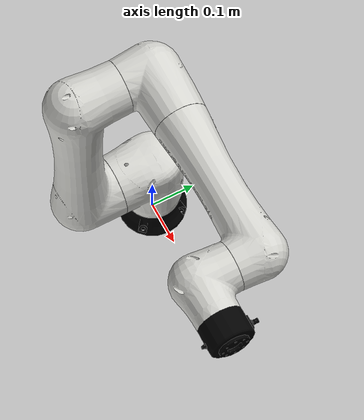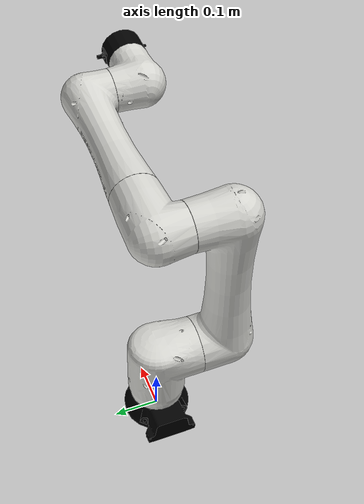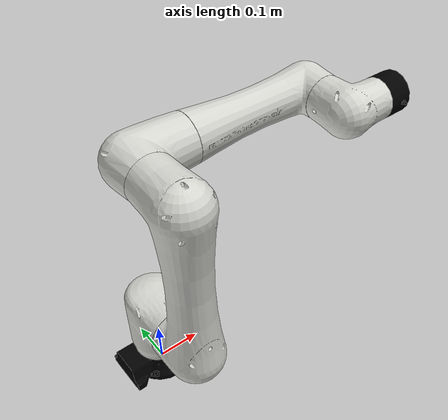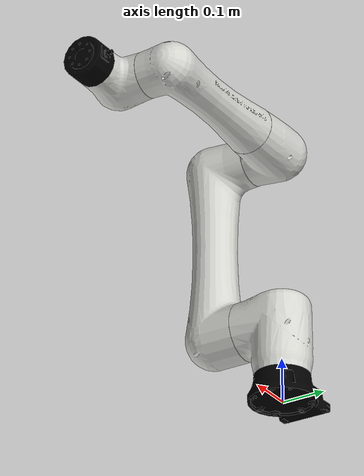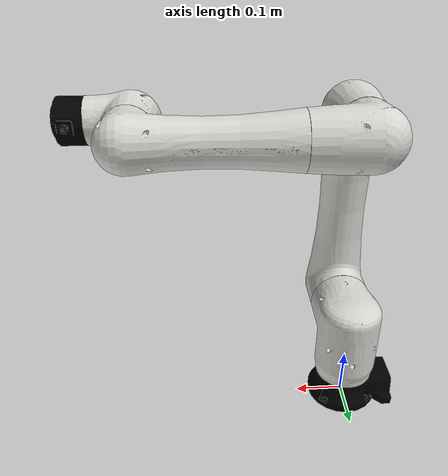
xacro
<?xml version="1.0"?>
<robot xmlns:xacro="http://www.ros.org/wiki/xacro" name="crx5ia">
    <xacro:arg name="initial_positions_file" default="initial_positions.yaml" />

    <!-- Import crx5ia urdf file -->
    <xacro:include filename="$(find crx_description)/urdf/crx5ia/crx5ia.xacro" />

    <!-- Import control_xacro -->
    <xacro:include filename="crx5ia.ros2_control.xacro" />

    <xacro:crx5ia_ros2_control name="FakeSystem" initial_positions_file="$(arg initial_positions_file)"/>

</robot>

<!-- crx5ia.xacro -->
<robot name="crx5ia" xmlns:xacro="http://wiki.ros.org/xacro">

  <xacro:arg name="use_mock_hardware" default="true" />
  <xacro:arg name="read_only" default="false" />
  <xacro:arg name="robot_ip" default="192.168.150.2" />
  <xacro:arg name="use_rmi" default="false" />

  <xacro:include filename="$(find crx_description)/urdf/crx5ia/crx5ia.urdf.xacro"/>
  <xacro:crx5ia use_mock_hardware="$(arg use_mock_hardware)" robot_ip="$(arg robot_ip)" read_only="$(arg read_only)" use_rmi="$(arg use_rmi)"/>

</robot>

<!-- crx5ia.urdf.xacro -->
<robot xmlns:xacro="http://wiki.ros.org/xacro">

  <xacro:macro name="crx5ia"
                params="robot_ip='10.11.31.121'
                read_only='false'
                use_rmi='false'
                use_mock_hardware=false">

  <xacro:include filename="$(find crx_description)/urdf/crx.ros2_control.xacro"/>
  <xacro:crx_ros2_control name="crx5"
                          use_mock_hardware="${use_mock_hardware}"
                          robot_ip="${robot_ip}"
                          read_only="${read_only}"
                          use_rmi="${use_rmi}" />

    <material name="FANUC_Black">
      <color rgba="0 0 0 1.0"/>
    </material>
    <material name="FANUC_Yellow">
      <color rgba="1.00 0.84 0.01 1.00"/>
    </material>
    <material name="FANUC_Green">
      <color rgba="0.43 0.68 0.26 1.00"/>
    </material>
    <material name="FANUC_White">
      <color rgba="0.84 0.84 0.82 1.00"/>
    </material>

    <xacro:property name="l_base" value="0.185"/>
    <xacro:property name="l_1" value="0.0"/>
    <xacro:property name="l_2" value="0.410"/>
    <xacro:property name="l_3" value="0.0"/>
    <xacro:property name="l_4" value="0.430"/>
    <xacro:property name="l_5" value="0.130"/>
    <xacro:property name="l_6" value="0.145"/>

    <xacro:property name="j1_v" value="150"/>
    <xacro:property name="j2_v" value="150"/>
    <xacro:property name="j3_v" value="180"/>
    <xacro:property name="j4_v" value="225"/>
    <xacro:property name="j5_v" value="225"/>
    <xacro:property name="j6_v" value="225"/>

    <xacro:property name="j1_u" value="200"/>
    <xacro:property name="j2_u" value="179.9"/>
    <xacro:property name="j3_u" value="248"/>
    <xacro:property name="j4_u" value="190"/>
    <xacro:property name="j5_u" value="179.9"/>
    <xacro:property name="j6_u" value="225"/>

    <xacro:property name="j1_l" value="-200"/>
    <xacro:property name="j2_l" value="-179.9"/>
    <xacro:property name="j3_l" value="-68"/>
    <xacro:property name="j4_l" value="-190"/>
    <xacro:property name="j5_l" value="-179.9"/>
    <xacro:property name="j6_l" value="-225"/>

    <xacro:property name="mz_1" value="0.1277"/>
    <xacro:property name="mz_2" value="0.245"/>
    <xacro:property name="mz_3" value="0.955"/>
    <xacro:property name="mx_1" value="0.540"/>
    <xacro:property name="mx_2" value="0.700"/>
    <xacro:property name="my_1" value="-0.150"/>

    <!-- links -->
    <link name="base_link">
      <visual>
	<origin xyz="0 0 0" rpy="0 0 0"/>
	<geometry>
	  <mesh filename="package://crx_description/meshes/crx5ia/visual/base.stl" scale="0.001 0.001 0.001"/>
	</geometry>
	<material name="FANUC_Black"/>
      </visual>
      <collision>
	<origin xyz="0 0 0" rpy="0 0 0"/>
	<geometry>
	  <mesh filename="package://crx_description/meshes/crx5ia/collision/base.stl" scale="0.001 0.001 0.001"/>
	</geometry>
      </collision>
    </link>

    <link name="J1_link">
      <visual>
        <origin xyz="0 0 ${-l_base}" rpy="0 0 ${-pi/2}"/>
	<geometry>
	  <mesh filename="package://crx_description/meshes/crx5ia/visual/j1.stl" scale="0.001 0.001 0.001"/>
	</geometry>
	<material name="FANUC_White"/>
      </visual>
      <collision>
        <origin xyz="0 0 ${-l_base}" rpy="0 0 ${-pi/2}"/>
	<geometry>
	  <mesh filename="package://crx_description/meshes/crx5ia/collision/j1.stl" scale="0.001 0.001 0.001"/>
	</geometry>
      </collision>
    </link>

    <link name="J2_link">
      <visual>
        <origin xyz="-${l_1} 0 ${-l_base}" rpy="0 0 ${-pi/2}"/>
	<geometry>
	  <mesh filename="package://crx_description/meshes/crx5ia/visual/j2.stl" scale="0.001 0.001 0.001"/>
	</geometry>
	<material name="FANUC_White"/>
      </visual>
      <collision>
        <origin xyz="-${l_1} 0 ${-l_base}" rpy="0 0 ${-pi/2}"/>
	<geometry>
	  <mesh filename="package://crx_description/meshes/crx5ia/collision/j2.stl" scale="0.001 0.001 0.001"/>
	</geometry>
      </collision>
    </link>

    <link name="J3_link">
      <visual>
        <origin xyz="-${l_1} 0 ${-l_base - l_2}" rpy="0 0 ${-pi/2}"/>
	<geometry>
	  <mesh filename="package://crx_description/meshes/crx5ia/visual/j3.stl" scale="0.001 0.001 0.001"/>
	</geometry>
	<material name="FANUC_White"/>
      </visual>
      <collision>
        <origin xyz="-${l_1} 0 ${-l_base - l_2}" rpy="0 0 ${-pi/2}"/>
	<geometry>
	  <mesh filename="package://crx_description/meshes/crx5ia/collision/j3.stl" scale="0.001 0.001 0.001"/>
	</geometry>
      </collision>
    </link>

    <link name="J4_link">
      <visual>
        <origin xyz="${-l_1} 0 ${-l_base - l_2 - l_3}" rpy="0 0 ${-pi/2}"/>
	<geometry>
	  <mesh filename="package://crx_description/meshes/crx5ia/visual/j4.stl" scale="0.001 0.001 0.001"/>
	</geometry>
	<material name="FANUC_White"/>
      </visual>
      <collision>
        <origin xyz="${-l_1} 0 ${-l_base - l_2 - l_3}" rpy="0 0 ${-pi/2}"/>
	<geometry>
	  <mesh filename="package://crx_description/meshes/crx5ia/collision/j4.stl" scale="0.001 0.001 0.001"/>
	</geometry>
      </collision>
    </link>

    <link name="J5_link">
      <visual>
        <origin xyz="${-l_1 - l_4} 0 ${-l_base - l_2 - l_3}" rpy="0 0 ${-pi/2}"/>
	<geometry>
	  <mesh filename="package://crx_description/meshes/crx5ia/visual/j5.stl" scale="0.001 0.001 0.001"/>
	</geometry>
	<material name="FANUC_White"/>
      </visual>
      <collision>
        <origin xyz="${-l_1 - l_4} 0 ${-l_base - l_2 - l_3}" rpy="0 0 ${-pi/2}"/>
	<geometry>
	  <mesh filename="package://crx_description/meshes/crx5ia/collision/j5.stl" scale="0.001 0.001 0.001"/>
	</geometry>
      </collision>
    </link>

    <link name="J6_link">
      <visual>
        <origin xyz="0 0 0" rpy="0 0 0"/>
	<geometry>
	  <mesh filename="package://crx_description/meshes/crx5ia/visual/j6.stl" scale="0.001 0.001 0.001"/>
	</geometry>
	<material name="FANUC_Black"/>
      </visual>
      <collision>
        <origin xyz="0 0 0" rpy="0 0 0"/>
	<geometry>
	  <mesh filename="package://crx_description/meshes/crx5ia/collision/j6.stl" scale="0.001 0.001 0.001"/>
	</geometry>
      </collision>
    </link>

    <!-- joints -->
    <joint name="J1" type="revolute">
      <origin xyz="0 0 ${l_base}" rpy="0 0 0"/>
      <parent link="base_link"/>
      <child link="J1_link"/>
      <axis xyz="0 0 1"/>
      <limit lower="${j1_l * pi / 180}" upper="${j1_u * pi / 180}" effort="0" velocity="${j1_v * pi / 180}"/>
    </joint>

    <joint name="J2" type="revolute">
      <origin xyz="${l_1} 0 0" rpy="0 0 0"/>
      <parent link="J1_link"/>
      <child link="J2_link"/>
      <axis xyz="0 1 0"/>
      <limit lower="${j2_l * pi / 180}" upper="${j2_u * pi / 180}" effort="0" velocity="${j2_v * pi / 180}"/>
    </joint>

    <joint name="J3" type="revolute">
      <origin xyz="0 0 ${l_2}" rpy="0 0 0"/>
      <parent link="J2_link"/>
      <child link="J3_link"/>
      <axis xyz="0 -1 0"/>
      <limit lower="${j3_l * pi / 180}" upper="${j3_u * pi / 180}" effort="0" velocity="${j3_v * pi / 180}"/>
    </joint>

    <joint name="J4" type="revolute">
      <origin xyz="0 0 ${l_3}" rpy="0 0 0"/>
      <parent link="J3_link"/>
      <child link="J4_link"/>
      <axis xyz="-1 0 0"/>
      <limit lower="${j4_l * pi / 180}" upper="${j4_u * pi / 180}" effort="0" velocity="${j4_v * pi / 180}"/>
    </joint>

    <joint name="J5" type="revolute">
      <origin xyz="${l_4} 0 0" rpy="0 0 0"/>
      <parent link="J4_link"/>
      <child link="J5_link"/>
      <axis xyz="0 -1 0"/>
      <limit lower="${j5_l * pi / 180}" upper="${j5_u * pi / 180}" effort="0" velocity="${j5_v * pi / 180}"/>
    </joint>

    <joint name="J6" type="revolute">
      <origin xyz="0 -${l_5} 0" rpy="0 0 0"/>
      <parent link="J5_link"/>
      <child link="J6_link"/>
      <axis xyz="-1 0 0"/>
      <limit lower="${j6_l * pi / 180}" upper="${j6_u * pi / 180}" effort="0" velocity="${j6_v * pi / 180}"/>
    </joint>

    <!-- world coords -->
    <link name="wbase" />
    <joint name="base_link-wbase" type="fixed">
      <origin xyz="0 0 ${l_base}" rpy="0 0 0"/>
      <parent link="base_link"/>
      <child link="wbase"/>
    </joint>

    <!-- flange coords -->
    <link name="flange" />
    <joint name="J6-flange" type="fixed">
      <origin xyz="${l_6} 0 0" rpy="0 0 0" />
      <parent link="J6_link" />
      <child link="flange" />
    </joint>

    <!-- flange1 coords -->
    <link name="flange1" />
    <joint name="flange-flange1" type="fixed">
      <origin xyz="0 0 0" rpy="0 ${pi/2} 0" />
      <parent link="flange" />
      <child link="flange1" />
    </joint>

    <!-- tcp coords -->
    <link name="tcp" />
    <joint name="flange1-tcp" type="fixed">
      <origin xyz="0 0 0" rpy="0 0 0" />
      <parent link="flange1" />
      <child link="tcp" />
    </joint>

    <!-- tcp right coord -->
    <link name="tcp_right" />
    <joint name="tcp-tcp_right" type="fixed">
      <origin xyz="0 0.012 0.013" rpy="0 0 0" />
      <parent link="tcp" />
      <child link="tcp_right" />
    </joint>

    <!-- tcp left coord -->
    <link name="tcp_left" />
    <joint name="tcp-tcp_left" type="fixed">
      <origin xyz="0 -0.012 0.013" rpy="0 0 0" />
      <parent link="tcp" />
      <child link="tcp_left" />
    </joint>

  </xacro:macro>
</robot>
